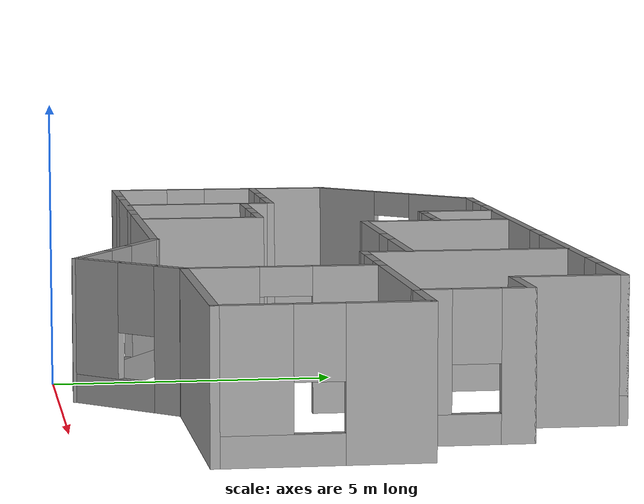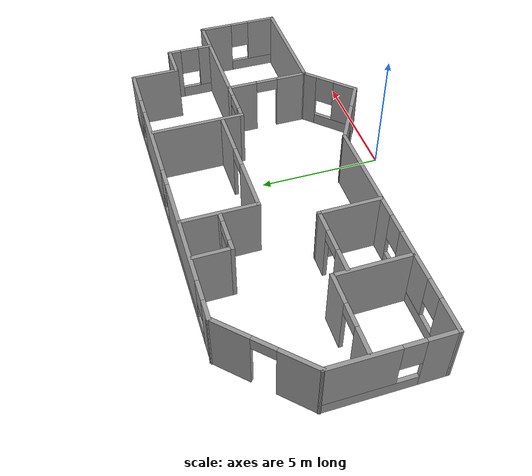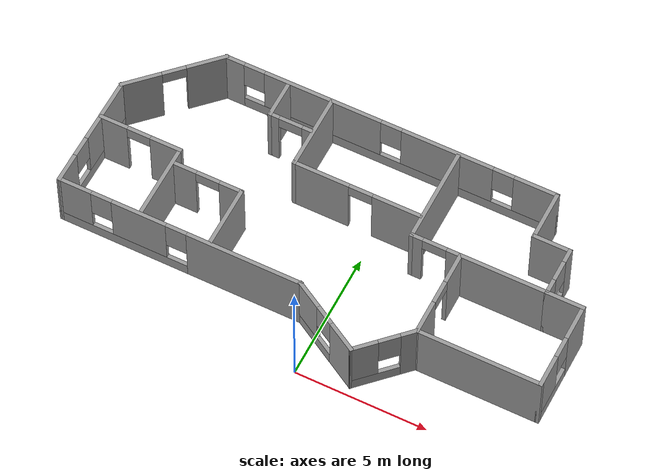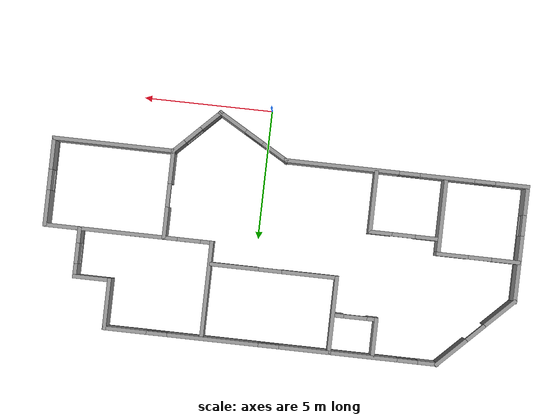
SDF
<?xml version='1.0'?>
<sdf version='1.6'>
  <model name='house'>
    <pose frame=''>-0.953432 4.70909 0 0 -0 0</pose>
    <link name='Wall_10'>
      <pose frame=''>3.72086 -3.525 0 0 0 -2.35619</pose>
      <visual name='Wall_10_Visual_0'>
        <pose frame=''>-0.917996 0 1.25 0 -0 0</pose>
        <geometry>
          <box>
            <size>0.664008 0.15 2.5</size>
          </box>
        </geometry>
        <material>
          <script>
            <uri>file://media/materials/scripts/gazebo.material</uri>
            <name>Gazebo/Grey</name>
          </script>
          <ambient>1 1 1 1</ambient>
        </material>
        <meta>
          <layer>0</layer>
        </meta>
      </visual>
      <collision name='Wall_10_Collision_0'>
        <geometry>
          <box>
            <size>0.664008 0.15 2.5</size>
          </box>
        </geometry>
        <pose frame=''>-0.917996 0 1.25 0 -0 0</pose>
      </collision>
      <visual name='Wall_10_Visual_1'>
        <pose frame=''>0.332004 0 0.25 0 -0 0</pose>
        <geometry>
          <box>
            <size>1.83599 0.15 0.5</size>
          </box>
        </geometry>
        <material>
          <script>
            <uri>file://media/materials/scripts/gazebo.material</uri>
            <name>Gazebo/Grey</name>
          </script>
          <ambient>1 1 1 1</ambient>
        </material>
        <meta>
          <layer>0</layer>
        </meta>
      </visual>
      <collision name='Wall_10_Collision_1'>
        <geometry>
          <box>
            <size>1.83599 0.15 0.5</size>
          </box>
        </geometry>
        <pose frame=''>0.332004 0 0.25 0 -0 0</pose>
      </collision>
      <visual name='Wall_10_Visual_2'>
        <pose frame=''>0.732004 0 1.5 0 -0 0</pose>
        <geometry>
          <box>
            <size>1.03599 0.15 2</size>
          </box>
        </geometry>
        <material>
          <script>
            <uri>file://media/materials/scripts/gazebo.material</uri>
            <name>Gazebo/Grey</name>
          </script>
          <ambient>1 1 1 1</ambient>
        </material>
        <meta>
          <layer>0</layer>
        </meta>
      </visual>
      <collision name='Wall_10_Collision_2'>
        <geometry>
          <box>
            <size>1.03599 0.15 2</size>
          </box>
        </geometry>
        <pose frame=''>0.732004 0 1.5 0 -0 0</pose>
      </collision>
      <visual name='Wall_10_Visual_3'>
        <pose frame=''>-0.185992 0 1.9 0 -0 0</pose>
        <geometry>
          <box>
            <size>0.8 0.15 1.2</size>
          </box>
        </geometry>
        <material>
          <script>
            <uri>file://media/materials/scripts/gazebo.material</uri>
            <name>Gazebo/Grey</name>
          </script>
          <ambient>1 1 1 1</ambient>
        </material>
        <meta>
          <layer>0</layer>
        </meta>
      </visual>
      <collision name='Wall_10_Collision_3'>
        <geometry>
          <box>
            <size>0.8 0.15 1.2</size>
          </box>
        </geometry>
        <pose frame=''>-0.185992 0 1.9 0 -0 0</pose>
      </collision>
    </link>
    <link name='Wall_11'>
      <pose frame=''>1.54767 -3.58085 0 0 -0 2.61799</pose>
      <visual name='Wall_11_Visual_0'>
        <pose frame=''>-0.990098 0 1.25 0 -0 0</pose>
        <geometry>
          <box>
            <size>1.2698 0.15 2.5</size>
          </box>
        </geometry>
        <material>
          <script>
            <uri>file://media/materials/scripts/gazebo.material</uri>
            <name>Gazebo/Grey</name>
          </script>
          <ambient>1 1 1 1</ambient>
        </material>
        <meta>
          <layer>0</layer>
        </meta>
      </visual>
      <collision name='Wall_11_Collision_0'>
        <geometry>
          <box>
            <size>1.2698 0.15 2.5</size>
          </box>
        </geometry>
        <pose frame=''>-0.990098 0 1.25 0 -0 0</pose>
      </collision>
      <visual name='Wall_11_Visual_1'>
        <pose frame=''>0.634902 0 0.25 0 -0 0</pose>
        <geometry>
          <box>
            <size>1.9802 0.15 0.5</size>
          </box>
        </geometry>
        <material>
          <script>
            <uri>file://media/materials/scripts/gazebo.material</uri>
            <name>Gazebo/Grey</name>
          </script>
          <ambient>1 1 1 1</ambient>
        </material>
        <meta>
          <layer>0</layer>
        </meta>
      </visual>
      <collision name='Wall_11_Collision_1'>
        <geometry>
          <box>
            <size>1.9802 0.15 0.5</size>
          </box>
        </geometry>
        <pose frame=''>0.634902 0 0.25 0 -0 0</pose>
      </collision>
      <visual name='Wall_11_Visual_2'>
        <pose frame=''>1.0349 0 1.5 0 -0 0</pose>
        <geometry>
          <box>
            <size>1.1802 0.15 2</size>
          </box>
        </geometry>
        <material>
          <script>
            <uri>file://media/materials/scripts/gazebo.material</uri>
            <name>Gazebo/Grey</name>
          </script>
          <ambient>1 1 1 1</ambient>
        </material>
        <meta>
          <layer>0</layer>
        </meta>
      </visual>
      <collision name='Wall_11_Collision_2'>
        <geometry>
          <box>
            <size>1.1802 0.15 2</size>
          </box>
        </geometry>
        <pose frame=''>1.0349 0 1.5 0 -0 0</pose>
      </collision>
      <visual name='Wall_11_Visual_3'>
        <pose frame=''>0.044803 0 1.9 0 -0 0</pose>
        <geometry>
          <box>
            <size>0.8 0.15 1.2</size>
          </box>
        </geometry>
        <material>
          <script>
            <uri>file://media/materials/scripts/gazebo.material</uri>
            <name>Gazebo/Grey</name>
          </script>
          <ambient>1 1 1 1</ambient>
        </material>
        <meta>
          <layer>0</layer>
        </meta>
      </visual>
      <collision name='Wall_11_Collision_3'>
        <geometry>
          <box>
            <size>0.8 0.15 1.2</size>
          </box>
        </geometry>
        <pose frame=''>0.044803 0 1.9 0 -0 0</pose>
      </collision>
    </link>
    <link name='Wall_12'>
      <pose frame=''>-4.46967 -2.80585 0 0 -0 3.14159</pose>
      <visual name='Wall_12_Visual_0'>
        <pose frame=''>-2.52226 0 1.25 0 -0 0</pose>
        <geometry>
          <box>
            <size>4.45547 0.15 2.5</size>
          </box>
        </geometry>
        <material>
          <script>
            <uri>file://media/materials/scripts/gazebo.material</uri>
            <name>Gazebo/Grey</name>
          </script>
          <ambient>1 1 1 1</ambient>
        </material>
        <meta>
          <layer>0</layer>
        </meta>
      </visual>
      <collision name='Wall_12_Collision_0'>
        <geometry>
          <box>
            <size>4.45547 0.15 2.5</size>
          </box>
        </geometry>
        <pose frame=''>-2.52226 0 1.25 0 -0 0</pose>
      </collision>
      <visual name='Wall_12_Visual_1'>
        <pose frame=''>2.22774 0 0.25 0 -0 0</pose>
        <geometry>
          <box>
            <size>5.04453 0.15 0.5</size>
          </box>
        </geometry>
        <material>
          <script>
            <uri>file://media/materials/scripts/gazebo.material</uri>
            <name>Gazebo/Grey</name>
          </script>
          <ambient>1 1 1 1</ambient>
        </material>
        <meta>
          <layer>0</layer>
        </meta>
      </visual>
      <collision name='Wall_12_Collision_1'>
        <geometry>
          <box>
            <size>5.04453 0.15 0.5</size>
          </box>
        </geometry>
        <pose frame=''>2.22774 0 0.25 0 -0 0</pose>
      </collision>
      <visual name='Wall_12_Visual_2'>
        <pose frame=''>1.5627 0 1.5 0 -0 0</pose>
        <geometry>
          <box>
            <size>2.11446 0.15 2</size>
          </box>
        </geometry>
        <material>
          <script>
            <uri>file://media/materials/scripts/gazebo.material</uri>
            <name>Gazebo/Grey</name>
          </script>
          <ambient>1 1 1 1</ambient>
        </material>
        <meta>
          <layer>0</layer>
        </meta>
      </visual>
      <collision name='Wall_12_Collision_2'>
        <geometry>
          <box>
            <size>2.11446 0.15 2</size>
          </box>
        </geometry>
        <pose frame=''>1.5627 0 1.5 0 -0 0</pose>
      </collision>
      <visual name='Wall_12_Visual_3'>
        <pose frame=''>4.08496 0 1.5 0 -0 0</pose>
        <geometry>
          <box>
            <size>1.33007 0.15 2</size>
          </box>
        </geometry>
        <material>
          <script>
            <uri>file://media/materials/scripts/gazebo.material</uri>
            <name>Gazebo/Grey</name>
          </script>
          <ambient>1 1 1 1</ambient>
        </material>
        <meta>
          <layer>0</layer>
        </meta>
      </visual>
      <collision name='Wall_12_Collision_3'>
        <geometry>
          <box>
            <size>1.33007 0.15 2</size>
          </box>
        </geometry>
        <pose frame=''>4.08496 0 1.5 0 -0 0</pose>
      </collision>
      <visual name='Wall_12_Visual_4'>
        <pose frame=''>0.10547 0 1.9 0 -0 0</pose>
        <geometry>
          <box>
            <size>0.8 0.15 1.2</size>
          </box>
        </geometry>
        <material>
          <script>
            <uri>file://media/materials/scripts/gazebo.material</uri>
            <name>Gazebo/Grey</name>
          </script>
          <ambient>1 1 1 1</ambient>
        </material>
        <meta>
          <layer>0</layer>
        </meta>
      </visual>
      <collision name='Wall_12_Collision_4'>
        <geometry>
          <box>
            <size>0.8 0.15 1.2</size>
          </box>
        </geometry>
        <pose frame=''>0.10547 0 1.9 0 -0 0</pose>
      </collision>
      <visual name='Wall_12_Visual_5'>
        <pose frame=''>3.01993 0 1.9 0 -0 0</pose>
        <geometry>
          <box>
            <size>0.8 0.15 1.2</size>
          </box>
        </geometry>
        <material>
          <script>
            <uri>file://media/materials/scripts/gazebo.material</uri>
            <name>Gazebo/Grey</name>
          </script>
          <ambient>1 1 1 1</ambient>
        </material>
        <meta>
          <layer>0</layer>
        </meta>
      </visual>
      <collision name='Wall_12_Collision_5'>
        <geometry>
          <box>
            <size>0.8 0.15 1.2</size>
          </box>
        </geometry>
        <pose frame=''>3.01993 0 1.9 0 -0 0</pose>
      </collision>
    </link>
    <link name='Wall_13'>
      <pose frame=''>-9.13266 -0.586181 0 0 -0 1.56539</pose>
      <visual name='Wall_13_Visual_0'>
        <pose frame=''>-1.70872 0 1.25 0 -0 0</pose>
        <geometry>
          <box>
            <size>1.17197 0.15 2.5</size>
          </box>
        </geometry>
        <material>
          <script>
            <uri>file://media/materials/scripts/gazebo.material</uri>
            <name>Gazebo/Grey</name>
          </script>
          <ambient>1 1 1 1</ambient>
        </material>
        <meta>
          <layer>0</layer>
        </meta>
      </visual>
      <collision name='Wall_13_Collision_0'>
        <geometry>
          <box>
            <size>1.17197 0.15 2.5</size>
          </box>
        </geometry>
        <pose frame=''>-1.70872 0 1.25 0 -0 0</pose>
      </collision>
      <visual name='Wall_13_Visual_1'>
        <pose frame=''>0.585986 0 0.25 0 -0 0</pose>
        <geometry>
          <box>
            <size>3.41743 0.15 0.5</size>
          </box>
        </geometry>
        <material>
          <script>
            <uri>file://media/materials/scripts/gazebo.material</uri>
            <name>Gazebo/Grey</name>
          </script>
          <ambient>1 1 1 1</ambient>
        </material>
        <meta>
          <layer>0</layer>
        </meta>
      </visual>
      <collision name='Wall_13_Collision_1'>
        <geometry>
          <box>
            <size>3.41743 0.15 0.5</size>
          </box>
        </geometry>
        <pose frame=''>0.585986 0 0.25 0 -0 0</pose>
      </collision>
      <visual name='Wall_13_Visual_2'>
        <pose frame=''>0.985986 0 1.5 0 -0 0</pose>
        <geometry>
          <box>
            <size>2.61743 0.15 2</size>
          </box>
        </geometry>
        <material>
          <script>
            <uri>file://media/materials/scripts/gazebo.material</uri>
            <name>Gazebo/Grey</name>
          </script>
          <ambient>1 1 1 1</ambient>
        </material>
        <meta>
          <layer>0</layer>
        </meta>
      </visual>
      <collision name='Wall_13_Collision_2'>
        <geometry>
          <box>
            <size>2.61743 0.15 2</size>
          </box>
        </geometry>
        <pose frame=''>0.985986 0 1.5 0 -0 0</pose>
      </collision>
      <visual name='Wall_13_Visual_3'>
        <pose frame=''>-0.722731 0 1.9 0 -0 0</pose>
        <geometry>
          <box>
            <size>0.8 0.15 1.2</size>
          </box>
        </geometry>
        <material>
          <script>
            <uri>file://media/materials/scripts/gazebo.material</uri>
            <name>Gazebo/Grey</name>
          </script>
          <ambient>1 1 1 1</ambient>
        </material>
        <meta>
          <layer>0</layer>
        </meta>
      </visual>
      <collision name='Wall_13_Collision_3'>
        <geometry>
          <box>
            <size>0.8 0.15 1.2</size>
          </box>
        </geometry>
        <pose frame=''>-0.722731 0 1.9 0 -0 0</pose>
      </collision>
    </link>
    <link name='Wall_15'>
      <pose frame=''>-7.54673 0.125343 0 0 -0 0</pose>
      <visual name='Wall_15_Visual_0'>
        <pose frame=''>-1.06675 0 1.25 0 -0 0</pose>
        <geometry>
          <box>
            <size>1.11649 0.15 2.5</size>
          </box>
        </geometry>
        <material>
          <script>
            <uri>file://media/materials/scripts/gazebo.material</uri>
            <name>Gazebo/Grey</name>
          </script>
          <ambient>1 1 1 1</ambient>
        </material>
        <meta>
          <layer>0</layer>
        </meta>
      </visual>
      <collision name='Wall_15_Collision_0'>
        <geometry>
          <box>
            <size>1.11649 0.15 2.5</size>
          </box>
        </geometry>
        <pose frame=''>-1.06675 0 1.25 0 -0 0</pose>
      </collision>
      <visual name='Wall_15_Visual_1'>
        <pose frame=''>1.00825 0 1.25 0 -0 0</pose>
        <geometry>
          <box>
            <size>1.23351 0.15 2.5</size>
          </box>
        </geometry>
        <material>
          <script>
            <uri>file://media/materials/scripts/gazebo.material</uri>
            <name>Gazebo/Grey</name>
          </script>
          <ambient>1 1 1 1</ambient>
        </material>
        <meta>
          <layer>0</layer>
        </meta>
      </visual>
      <collision name='Wall_15_Collision_1'>
        <geometry>
          <box>
            <size>1.23351 0.15 2.5</size>
          </box>
        </geometry>
        <pose frame=''>1.00825 0 1.25 0 -0 0</pose>
      </collision>
      <visual name='Wall_15_Visual_2'>
        <pose frame=''>-0.058511 0 2.25 0 -0 0</pose>
        <geometry>
          <box>
            <size>0.9 0.15 0.5</size>
          </box>
        </geometry>
        <material>
          <script>
            <uri>file://media/materials/scripts/gazebo.material</uri>
            <name>Gazebo/Grey</name>
          </script>
          <ambient>1 1 1 1</ambient>
        </material>
        <meta>
          <layer>0</layer>
        </meta>
      </visual>
      <collision name='Wall_15_Collision_2'>
        <geometry>
          <box>
            <size>0.9 0.15 0.5</size>
          </box>
        </geometry>
        <pose frame=''>-0.058511 0 2.25 0 -0 0</pose>
      </collision>
    </link>
    <link name='Wall_16'>
      <collision name='Wall_16_Collision'>
        <geometry>
          <box>
            <size>3 0.15 2.5</size>
          </box>
        </geometry>
        <pose frame=''>0 0 1.25 0 -0 0</pose>
      </collision>
      <visual name='Wall_16_Visual'>
        <pose frame=''>0 0 1.25 0 -0 0</pose>
        <geometry>
          <box>
            <size>3 0.15 2.5</size>
          </box>
        </geometry>
        <material>
          <script>
            <uri>file://media/materials/scripts/gazebo.material</uri>
            <name>Gazebo/Grey</name>
          </script>
          <ambient>1 1 1 1</ambient>
        </material>
        <meta>
          <layer>0</layer>
        </meta>
      </visual>
      <pose frame=''>-5.99674 -1.29966 0 0 0 -1.5708</pose>
    </link>
    <link name='Wall_18'>
      <pose frame=''>-4.60471 -0.433261 0 0 -0 0</pose>
      <visual name='Wall_18_Visual_0'>
        <pose frame=''>-0.909278 0 1.25 0 -0 0</pose>
        <geometry>
          <box>
            <size>0.931444 0.15 2.5</size>
          </box>
        </geometry>
        <material>
          <script>
            <uri>file://media/materials/scripts/gazebo.material</uri>
            <name>Gazebo/Grey</name>
          </script>
          <ambient>1 1 1 1</ambient>
        </material>
        <meta>
          <layer>0</layer>
        </meta>
      </visual>
      <collision name='Wall_18_Collision_0'>
        <geometry>
          <box>
            <size>0.931444 0.15 2.5</size>
          </box>
        </geometry>
        <pose frame=''>-0.909278 0 1.25 0 -0 0</pose>
      </collision>
      <visual name='Wall_18_Visual_1'>
        <pose frame=''>0.915722 0 1.25 0 -0 0</pose>
        <geometry>
          <box>
            <size>0.918556 0.15 2.5</size>
          </box>
        </geometry>
        <material>
          <script>
            <uri>file://media/materials/scripts/gazebo.material</uri>
            <name>Gazebo/Grey</name>
          </script>
          <ambient>1 1 1 1</ambient>
        </material>
        <meta>
          <layer>0</layer>
        </meta>
      </visual>
      <collision name='Wall_18_Collision_1'>
        <geometry>
          <box>
            <size>0.918556 0.15 2.5</size>
          </box>
        </geometry>
        <pose frame=''>0.915722 0 1.25 0 -0 0</pose>
      </collision>
      <visual name='Wall_18_Visual_2'>
        <pose frame=''>0.006444 0 2.25 0 -0 0</pose>
        <geometry>
          <box>
            <size>0.9 0.15 0.5</size>
          </box>
        </geometry>
        <material>
          <script>
            <uri>file://media/materials/scripts/gazebo.material</uri>
            <name>Gazebo/Grey</name>
          </script>
          <ambient>1 1 1 1</ambient>
        </material>
        <meta>
          <layer>0</layer>
        </meta>
      </visual>
      <collision name='Wall_18_Collision_2'>
        <geometry>
          <box>
            <size>0.9 0.15 0.5</size>
          </box>
        </geometry>
        <pose frame=''>0.006444 0 2.25 0 -0 0</pose>
      </collision>
    </link>
    <link name='Wall_19'>
      <collision name='Wall_19_Collision'>
        <geometry>
          <box>
            <size>2.5 0.15 2.5</size>
          </box>
        </geometry>
        <pose frame=''>0 0 1.25 0 -0 0</pose>
      </collision>
      <visual name='Wall_19_Visual'>
        <pose frame=''>0 0 1.25 0 -0 0</pose>
        <geometry>
          <box>
            <size>2.5 0.15 2.5</size>
          </box>
        </geometry>
        <material>
          <script>
            <uri>file://media/materials/scripts/gazebo.material</uri>
            <name>Gazebo/Grey</name>
          </script>
          <ambient>1 1 1 1</ambient>
        </material>
        <meta>
          <layer>0</layer>
        </meta>
      </visual>
      <pose frame=''>-3.30471 -1.60826 0 0 0 -1.5708</pose>
    </link>
    <link name='Wall_2'>
      <pose frame=''>-7.75947 2.99467 0 0 -0 0.785398</pose>
      <visual name='Wall_2_Visual_0'>
        <pose frame=''>-1.22818 0 1.25 0 -0 0</pose>
        <geometry>
          <box>
            <size>1.54364 0.15 2.5</size>
          </box>
        </geometry>
        <material>
          <script>
            <uri>file://media/materials/scripts/gazebo.material</uri>
            <name>Gazebo/Grey</name>
          </script>
          <ambient>1 1 1 1</ambient>
        </material>
        <meta>
          <layer>0</layer>
        </meta>
      </visual>
      <collision name='Wall_2_Collision_0'>
        <geometry>
          <box>
            <size>1.54364 0.15 2.5</size>
          </box>
        </geometry>
        <pose frame=''>-1.22818 0 1.25 0 -0 0</pose>
      </collision>
      <visual name='Wall_2_Visual_1'>
        <pose frame=''>1.22182 0 1.25 0 -0 0</pose>
        <geometry>
          <box>
            <size>1.55636 0.15 2.5</size>
          </box>
        </geometry>
        <material>
          <script>
            <uri>file://media/materials/scripts/gazebo.material</uri>
            <name>Gazebo/Grey</name>
          </script>
          <ambient>1 1 1 1</ambient>
        </material>
        <meta>
          <layer>0</layer>
        </meta>
      </visual>
      <collision name='Wall_2_Collision_1'>
        <geometry>
          <box>
            <size>1.55636 0.15 2.5</size>
          </box>
        </geometry>
        <pose frame=''>1.22182 0 1.25 0 -0 0</pose>
      </collision>
      <visual name='Wall_2_Visual_2'>
        <pose frame=''>-0.006361 0 2.25 0 -0 0</pose>
        <geometry>
          <box>
            <size>0.9 0.15 0.5</size>
          </box>
        </geometry>
        <material>
          <script>
            <uri>file://media/materials/scripts/gazebo.material</uri>
            <name>Gazebo/Grey</name>
          </script>
          <ambient>1 1 1 1</ambient>
        </material>
        <meta>
          <layer>0</layer>
        </meta>
      </visual>
      <collision name='Wall_2_Collision_2'>
        <geometry>
          <box>
            <size>0.9 0.15 0.5</size>
          </box>
        </geometry>
        <pose frame=''>-0.006361 0 2.25 0 -0 0</pose>
      </collision>
    </link>
    <link name='Wall_24'>
      <pose frame=''>4.55171 -1.01915 0 0 -0 1.5708</pose>
      <visual name='Wall_24_Visual_0'>
        <pose frame=''>-1.0809 0 1.25 0 -0 0</pose>
        <geometry>
          <box>
            <size>1.3382 0.15 2.5</size>
          </box>
        </geometry>
        <material>
          <script>
            <uri>file://media/materials/scripts/gazebo.material</uri>
            <name>Gazebo/Grey</name>
          </script>
          <ambient>1 1 1 1</ambient>
        </material>
        <meta>
          <layer>0</layer>
        </meta>
      </visual>
      <collision name='Wall_24_Collision_0'>
        <geometry>
          <box>
            <size>1.3382 0.15 2.5</size>
          </box>
        </geometry>
        <pose frame=''>-1.0809 0 1.25 0 -0 0</pose>
      </collision>
      <visual name='Wall_24_Visual_1'>
        <pose frame=''>1.1191 0 1.25 0 -0 0</pose>
        <geometry>
          <box>
            <size>1.2618 0.15 2.5</size>
          </box>
        </geometry>
        <material>
          <script>
            <uri>file://media/materials/scripts/gazebo.material</uri>
            <name>Gazebo/Grey</name>
          </script>
          <ambient>1 1 1 1</ambient>
        </material>
        <meta>
          <layer>0</layer>
        </meta>
      </visual>
      <collision name='Wall_24_Collision_1'>
        <geometry>
          <box>
            <size>1.2618 0.15 2.5</size>
          </box>
        </geometry>
        <pose frame=''>1.1191 0 1.25 0 -0 0</pose>
      </collision>
      <visual name='Wall_24_Visual_2'>
        <pose frame=''>0.038199 0 2.25 0 -0 0</pose>
        <geometry>
          <box>
            <size>0.9 0.15 0.5</size>
          </box>
        </geometry>
        <material>
          <script>
            <uri>file://media/materials/scripts/gazebo.material</uri>
            <name>Gazebo/Grey</name>
          </script>
          <ambient>1 1 1 1</ambient>
        </material>
        <meta>
          <layer>0</layer>
        </meta>
      </visual>
      <collision name='Wall_24_Collision_2'>
        <geometry>
          <box>
            <size>0.9 0.15 0.5</size>
          </box>
        </geometry>
        <pose frame=''>0.038199 0 2.25 0 -0 0</pose>
      </collision>
    </link>
    <link name='Wall_25'>
      <collision name='Wall_25_Collision'>
        <geometry>
          <box>
            <size>3.4 0.15 2.5</size>
          </box>
        </geometry>
        <pose frame=''>0 0 1.25 0 -0 0</pose>
      </collision>
      <visual name='Wall_25_Visual'>
        <pose frame=''>0 0 1.25 0 -0 0</pose>
        <geometry>
          <box>
            <size>3.4 0.15 2.5</size>
          </box>
        </geometry>
        <material>
          <script>
            <uri>file://media/materials/scripts/gazebo.material</uri>
            <name>Gazebo/Grey</name>
          </script>
          <ambient>1 1 1 1</ambient>
        </material>
        <meta>
          <layer>0</layer>
        </meta>
      </visual>
      <pose frame=''>6.17671 0.655851 0 0 -0 0</pose>
    </link>
    <link name='Wall_27'>
      <pose frame=''>3.62671 0.655851 0 0 -0 3.14159</pose>
      <visual name='Wall_27_Visual_0'>
        <pose frame=''>-0.702488 0 1.25 0 -0 0</pose>
        <geometry>
          <box>
            <size>0.595025 0.15 2.5</size>
          </box>
        </geometry>
        <material>
          <script>
            <uri>file://media/materials/scripts/gazebo.material</uri>
            <name>Gazebo/Grey</name>
          </script>
          <ambient>1 1 1 1</ambient>
        </material>
        <meta>
          <layer>0</layer>
        </meta>
      </visual>
      <collision name='Wall_27_Collision_0'>
        <geometry>
          <box>
            <size>0.595025 0.15 2.5</size>
          </box>
        </geometry>
        <pose frame=''>-0.702488 0 1.25 0 -0 0</pose>
      </collision>
      <visual name='Wall_27_Visual_1'>
        <pose frame=''>0.747512 0 1.25 0 -0 0</pose>
        <geometry>
          <box>
            <size>0.504975 0.15 2.5</size>
          </box>
        </geometry>
        <material>
          <script>
            <uri>file://media/materials/scripts/gazebo.material</uri>
            <name>Gazebo/Grey</name>
          </script>
          <ambient>1 1 1 1</ambient>
        </material>
        <meta>
          <layer>0</layer>
        </meta>
      </visual>
      <collision name='Wall_27_Collision_1'>
        <geometry>
          <box>
            <size>0.504975 0.15 2.5</size>
          </box>
        </geometry>
        <pose frame=''>0.747512 0 1.25 0 -0 0</pose>
      </collision>
      <visual name='Wall_27_Visual_2'>
        <pose frame=''>0.045025 0 2.25 0 -0 0</pose>
        <geometry>
          <box>
            <size>0.9 0.15 0.5</size>
          </box>
        </geometry>
        <material>
          <script>
            <uri>file://media/materials/scripts/gazebo.material</uri>
            <name>Gazebo/Grey</name>
          </script>
          <ambient>1 1 1 1</ambient>
        </material>
        <meta>
          <layer>0</layer>
        </meta>
      </visual>
      <collision name='Wall_27_Collision_2'>
        <geometry>
          <box>
            <size>0.9 0.15 0.5</size>
          </box>
        </geometry>
        <pose frame=''>0.045025 0 2.25 0 -0 0</pose>
      </collision>
    </link>
    <link name='Wall_29'>
      <collision name='Wall_29_Collision'>
        <geometry>
          <box>
            <size>3.75 0.15 2.5</size>
          </box>
        </geometry>
        <pose frame=''>0 0 1.25 0 -0 0</pose>
      </collision>
      <visual name='Wall_29_Visual'>
        <pose frame=''>0 0 1.25 0 -0 0</pose>
        <geometry>
          <box>
            <size>3.75 0.15 2.5</size>
          </box>
        </geometry>
        <material>
          <script>
            <uri>file://media/materials/scripts/gazebo.material</uri>
            <name>Gazebo/Grey</name>
          </script>
          <ambient>1 1 1 1</ambient>
        </material>
        <meta>
          <layer>0</layer>
        </meta>
      </visual>
      <pose frame=''>2.70171 2.45585 0 0 -0 1.5708</pose>
    </link>
    <link name='Wall_3'>
      <pose frame=''>0.026713 4.35585 0 0 -0 0</pose>
      <visual name='Wall_3_Visual_0'>
        <pose frame=''>-6.0975 0 1.25 0 -0 0</pose>
        <geometry>
          <box>
            <size>0.805004 0.15 2.5</size>
          </box>
        </geometry>
        <material>
          <script>
            <uri>file://media/materials/scripts/gazebo.material</uri>
            <name>Gazebo/Grey</name>
          </script>
          <ambient>1 1 1 1</ambient>
        </material>
        <meta>
          <layer>0</layer>
        </meta>
      </visual>
      <collision name='Wall_3_Collision_0'>
        <geometry>
          <box>
            <size>0.805004 0.15 2.5</size>
          </box>
        </geometry>
        <pose frame=''>-6.0975 0 1.25 0 -0 0</pose>
      </collision>
      <visual name='Wall_3_Visual_1'>
        <pose frame=''>0.402502 0 0.25 0 -0 0</pose>
        <geometry>
          <box>
            <size>12.195 0.15 0.5</size>
          </box>
        </geometry>
        <material>
          <script>
            <uri>file://media/materials/scripts/gazebo.material</uri>
            <name>Gazebo/Grey</name>
          </script>
          <ambient>1 1 1 1</ambient>
        </material>
        <meta>
          <layer>0</layer>
        </meta>
      </visual>
      <collision name='Wall_3_Collision_1'>
        <geometry>
          <box>
            <size>12.195 0.15 0.5</size>
          </box>
        </geometry>
        <pose frame=''>0.402502 0 0.25 0 -0 0</pose>
      </collision>
      <visual name='Wall_3_Visual_2'>
        <pose frame=''>-2.60983 0 1.5 0 -0 0</pose>
        <geometry>
          <box>
            <size>4.57032 0.15 2</size>
          </box>
        </geometry>
        <material>
          <script>
            <uri>file://media/materials/scripts/gazebo.material</uri>
            <name>Gazebo/Grey</name>
          </script>
          <ambient>1 1 1 1</ambient>
        </material>
        <meta>
          <layer>0</layer>
        </meta>
      </visual>
      <collision name='Wall_3_Collision_2'>
        <geometry>
          <box>
            <size>4.57032 0.15 2</size>
          </box>
        </geometry>
        <pose frame=''>-2.60983 0 1.5 0 -0 0</pose>
      </collision>
      <visual name='Wall_3_Visual_3'>
        <pose frame=''>2.23754 0 1.5 0 -0 0</pose>
        <geometry>
          <box>
            <size>3.52442 0.15 2</size>
          </box>
        </geometry>
        <material>
          <script>
            <uri>file://media/materials/scripts/gazebo.material</uri>
            <name>Gazebo/Grey</name>
          </script>
          <ambient>1 1 1 1</ambient>
        </material>
        <meta>
          <layer>0</layer>
        </meta>
      </visual>
      <collision name='Wall_3_Collision_3'>
        <geometry>
          <box>
            <size>3.52442 0.15 2</size>
          </box>
        </geometry>
        <pose frame=''>2.23754 0 1.5 0 -0 0</pose>
      </collision>
      <visual name='Wall_3_Visual_4'>
        <pose frame=''>5.64987 0 1.5 0 -0 0</pose>
        <geometry>
          <box>
            <size>1.70026 0.15 2</size>
          </box>
        </geometry>
        <material>
          <script>
            <uri>file://media/materials/scripts/gazebo.material</uri>
            <name>Gazebo/Grey</name>
          </script>
          <ambient>1 1 1 1</ambient>
        </material>
        <meta>
          <layer>0</layer>
        </meta>
      </visual>
      <collision name='Wall_3_Collision_4'>
        <geometry>
          <box>
            <size>1.70026 0.15 2</size>
          </box>
        </geometry>
        <pose frame=''>5.64987 0 1.5 0 -0 0</pose>
      </collision>
      <visual name='Wall_3_Visual_5'>
        <pose frame=''>-5.295 0 1.9 0 -0 0</pose>
        <geometry>
          <box>
            <size>0.8 0.15 1.2</size>
          </box>
        </geometry>
        <material>
          <script>
            <uri>file://media/materials/scripts/gazebo.material</uri>
            <name>Gazebo/Grey</name>
          </script>
          <ambient>1 1 1 1</ambient>
        </material>
        <meta>
          <layer>0</layer>
        </meta>
      </visual>
      <collision name='Wall_3_Collision_5'>
        <geometry>
          <box>
            <size>0.8 0.15 1.2</size>
          </box>
        </geometry>
        <pose frame=''>-5.295 0 1.9 0 -0 0</pose>
      </collision>
      <visual name='Wall_3_Visual_6'>
        <pose frame=''>0.075327 0 1.9 0 -0 0</pose>
        <geometry>
          <box>
            <size>0.8 0.15 1.2</size>
          </box>
        </geometry>
        <material>
          <script>
            <uri>file://media/materials/scripts/gazebo.material</uri>
            <name>Gazebo/Grey</name>
          </script>
          <ambient>1 1 1 1</ambient>
        </material>
        <meta>
          <layer>0</layer>
        </meta>
      </visual>
      <collision name='Wall_3_Collision_6'>
        <geometry>
          <box>
            <size>0.8 0.15 1.2</size>
          </box>
        </geometry>
        <pose frame=''>0.075327 0 1.9 0 -0 0</pose>
      </collision>
      <visual name='Wall_3_Visual_7'>
        <pose frame=''>4.39975 0 1.9 0 -0 0</pose>
        <geometry>
          <box>
            <size>0.8 0.15 1.2</size>
          </box>
        </geometry>
        <material>
          <script>
            <uri>file://media/materials/scripts/gazebo.material</uri>
            <name>Gazebo/Grey</name>
          </script>
          <ambient>1 1 1 1</ambient>
        </material>
        <meta>
          <layer>0</layer>
        </meta>
      </visual>
      <collision name='Wall_3_Collision_7'>
        <geometry>
          <box>
            <size>0.8 0.15 1.2</size>
          </box>
        </geometry>
        <pose frame=''>4.39975 0 1.9 0 -0 0</pose>
      </collision>
    </link>
    <link name='Wall_31'>
      <collision name='Wall_31_Collision'>
        <geometry>
          <box>
            <size>3 0.15 2.5</size>
          </box>
        </geometry>
        <pose frame=''>0 0 1.25 0 -0 0</pose>
      </collision>
      <visual name='Wall_31_Visual'>
        <pose frame=''>0 0 1.25 0 -0 0</pose>
        <geometry>
          <box>
            <size>3 0.15 2.5</size>
          </box>
        </geometry>
        <material>
          <script>
            <uri>file://media/materials/scripts/gazebo.material</uri>
            <name>Gazebo/Grey</name>
          </script>
          <ambient>1 1 1 1</ambient>
        </material>
        <meta>
          <layer>0</layer>
        </meta>
      </visual>
      <pose frame=''>-2.22775 2.89498 0 0 0 -1.5708</pose>
    </link>
    <link name='Wall_32'>
      <pose frame=''>0.197247 1.46999 0 0 -0 0</pose>
      <visual name='Wall_32_Visual_0'>
        <pose frame=''>-1.39778 0 1.25 0 -0 0</pose>
        <geometry>
          <box>
            <size>2.20444 0.15 2.5</size>
          </box>
        </geometry>
        <material>
          <script>
            <uri>file://media/materials/scripts/gazebo.material</uri>
            <name>Gazebo/Grey</name>
          </script>
          <ambient>1 1 1 1</ambient>
        </material>
        <meta>
          <layer>0</layer>
        </meta>
      </visual>
      <collision name='Wall_32_Collision_0'>
        <geometry>
          <box>
            <size>2.20444 0.15 2.5</size>
          </box>
        </geometry>
        <pose frame=''>-1.39778 0 1.25 0 -0 0</pose>
      </collision>
      <visual name='Wall_32_Visual_1'>
        <pose frame=''>1.55222 0 1.25 0 -0 0</pose>
        <geometry>
          <box>
            <size>1.89556 0.15 2.5</size>
          </box>
        </geometry>
        <material>
          <script>
            <uri>file://media/materials/scripts/gazebo.material</uri>
            <name>Gazebo/Grey</name>
          </script>
          <ambient>1 1 1 1</ambient>
        </material>
        <meta>
          <layer>0</layer>
        </meta>
      </visual>
      <collision name='Wall_32_Collision_1'>
        <geometry>
          <box>
            <size>1.89556 0.15 2.5</size>
          </box>
        </geometry>
        <pose frame=''>1.55222 0 1.25 0 -0 0</pose>
      </collision>
      <visual name='Wall_32_Visual_2'>
        <pose frame=''>0.154436 0 2.25 0 -0 0</pose>
        <geometry>
          <box>
            <size>0.9 0.15 0.5</size>
          </box>
        </geometry>
        <material>
          <script>
            <uri>file://media/materials/scripts/gazebo.material</uri>
            <name>Gazebo/Grey</name>
          </script>
          <ambient>1 1 1 1</ambient>
        </material>
        <meta>
          <layer>0</layer>
        </meta>
      </visual>
      <collision name='Wall_32_Collision_2'>
        <geometry>
          <box>
            <size>0.9 0.15 0.5</size>
          </box>
        </geometry>
        <pose frame=''>0.154436 0 2.25 0 -0 0</pose>
      </collision>
    </link>
    <link name='Wall_34'>
      <pose frame=''>-3.10834 2.90084 0 0 -0 3.14159</pose>
      <visual name='Wall_34_Visual_0'>
        <pose frame=''>-0.66928 0 1.25 0 -0 0</pose>
        <geometry>
          <box>
            <size>0.411441 0.15 2.5</size>
          </box>
        </geometry>
        <material>
          <script>
            <uri>file://media/materials/scripts/gazebo.material</uri>
            <name>Gazebo/Grey</name>
          </script>
          <ambient>1 1 1 1</ambient>
        </material>
        <meta>
          <layer>0</layer>
        </meta>
      </visual>
      <collision name='Wall_34_Collision_0'>
        <geometry>
          <box>
            <size>0.411441 0.15 2.5</size>
          </box>
        </geometry>
        <pose frame=''>-0.66928 0 1.25 0 -0 0</pose>
      </collision>
      <visual name='Wall_34_Visual_1'>
        <pose frame=''>0.65572 0 1.25 0 -0 0</pose>
        <geometry>
          <box>
            <size>0.438559 0.15 2.5</size>
          </box>
        </geometry>
        <material>
          <script>
            <uri>file://media/materials/scripts/gazebo.material</uri>
            <name>Gazebo/Grey</name>
          </script>
          <ambient>1 1 1 1</ambient>
        </material>
        <meta>
          <layer>0</layer>
        </meta>
      </visual>
      <collision name='Wall_34_Collision_1'>
        <geometry>
          <box>
            <size>0.438559 0.15 2.5</size>
          </box>
        </geometry>
        <pose frame=''>0.65572 0 1.25 0 -0 0</pose>
      </collision>
      <visual name='Wall_34_Visual_2'>
        <pose frame=''>-0.013559 0 2.25 0 -0 0</pose>
        <geometry>
          <box>
            <size>0.9 0.15 0.5</size>
          </box>
        </geometry>
        <material>
          <script>
            <uri>file://media/materials/scripts/gazebo.material</uri>
            <name>Gazebo/Grey</name>
          </script>
          <ambient>1 1 1 1</ambient>
        </material>
        <meta>
          <layer>0</layer>
        </meta>
      </visual>
      <collision name='Wall_34_Collision_2'>
        <geometry>
          <box>
            <size>0.9 0.15 0.5</size>
          </box>
        </geometry>
        <pose frame=''>-0.013559 0 2.25 0 -0 0</pose>
      </collision>
    </link>
    <link name='Wall_35'>
      <collision name='Wall_35_Collision'>
        <geometry>
          <box>
            <size>1.5 0.15 2.5</size>
          </box>
        </geometry>
        <pose frame=''>0 0 1.25 0 -0 0</pose>
      </collision>
      <visual name='Wall_35_Visual'>
        <pose frame=''>0 0 1.25 0 -0 0</pose>
        <geometry>
          <box>
            <size>1.5 0.15 2.5</size>
          </box>
        </geometry>
        <material>
          <script>
            <uri>file://media/materials/scripts/gazebo.material</uri>
            <name>Gazebo/Grey</name>
          </script>
          <ambient>1 1 1 1</ambient>
        </material>
        <meta>
          <layer>0</layer>
        </meta>
      </visual>
      <pose frame=''>-3.90834 3.57584 0 0 -0 1.5708</pose>
    </link>
    <link name='Wall_4'>
      <collision name='Wall_4_Collision'>
        <geometry>
          <box>
            <size>2 0.15 2.5</size>
          </box>
        </geometry>
        <pose frame=''>0 0 1.25 0 -0 0</pose>
      </collision>
      <visual name='Wall_4_Visual'>
        <pose frame=''>0 0 1.25 0 -0 0</pose>
        <geometry>
          <box>
            <size>2 0.15 2.5</size>
          </box>
        </geometry>
        <material>
          <script>
            <uri>file://media/materials/scripts/gazebo.material</uri>
            <name>Gazebo/Grey</name>
          </script>
          <ambient>1 1 1 1</ambient>
        </material>
        <meta>
          <layer>0</layer>
        </meta>
      </visual>
      <pose frame=''>6.45171 3.43085 0 0 0 -1.5708</pose>
    </link>
    <link name='Wall_5'>
      <collision name='Wall_5_Collision'>
        <geometry>
          <box>
            <size>1.5 0.15 2.5</size>
          </box>
        </geometry>
        <pose frame=''>0 0 1.25 0 -0 0</pose>
      </collision>
      <visual name='Wall_5_Visual'>
        <pose frame=''>0 0 1.25 0 -0 0</pose>
        <geometry>
          <box>
            <size>1.5 0.15 2.5</size>
          </box>
        </geometry>
        <material>
          <script>
            <uri>file://media/materials/scripts/gazebo.material</uri>
            <name>Gazebo/Grey</name>
          </script>
          <ambient>1 1 1 1</ambient>
        </material>
        <meta>
          <layer>0</layer>
        </meta>
      </visual>
      <pose frame=''>7.12671 2.50585 0 0 -0 0</pose>
    </link>
    <link name='Wall_6'>
      <pose frame=''>7.80171 1.58085 0 0 0 -1.5708</pose>
      <visual name='Wall_6_Visual_0'>
        <pose frame=''>-0.718403 0 1.25 0 -0 0</pose>
        <geometry>
          <box>
            <size>0.563194 0.15 2.5</size>
          </box>
        </geometry>
        <material>
          <script>
            <uri>file://media/materials/scripts/gazebo.material</uri>
            <name>Gazebo/Grey</name>
          </script>
          <ambient>1 1 1 1</ambient>
        </material>
        <meta>
          <layer>0</layer>
        </meta>
      </visual>
      <collision name='Wall_6_Collision_0'>
        <geometry>
          <box>
            <size>0.563194 0.15 2.5</size>
          </box>
        </geometry>
        <pose frame=''>-0.718403 0 1.25 0 -0 0</pose>
      </collision>
      <visual name='Wall_6_Visual_1'>
        <pose frame=''>0.281597 0 0.25 0 -0 0</pose>
        <geometry>
          <box>
            <size>1.43681 0.15 0.5</size>
          </box>
        </geometry>
        <material>
          <script>
            <uri>file://media/materials/scripts/gazebo.material</uri>
            <name>Gazebo/Grey</name>
          </script>
          <ambient>1 1 1 1</ambient>
        </material>
        <meta>
          <layer>0</layer>
        </meta>
      </visual>
      <collision name='Wall_6_Collision_1'>
        <geometry>
          <box>
            <size>1.43681 0.15 0.5</size>
          </box>
        </geometry>
        <pose frame=''>0.281597 0 0.25 0 -0 0</pose>
      </collision>
      <visual name='Wall_6_Visual_2'>
        <pose frame=''>0.681597 0 1.5 0 -0 0</pose>
        <geometry>
          <box>
            <size>0.636806 0.15 2</size>
          </box>
        </geometry>
        <material>
          <script>
            <uri>file://media/materials/scripts/gazebo.material</uri>
            <name>Gazebo/Grey</name>
          </script>
          <ambient>1 1 1 1</ambient>
        </material>
        <meta>
          <layer>0</layer>
        </meta>
      </visual>
      <collision name='Wall_6_Collision_2'>
        <geometry>
          <box>
            <size>0.636806 0.15 2</size>
          </box>
        </geometry>
        <pose frame=''>0.681597 0 1.5 0 -0 0</pose>
      </collision>
      <visual name='Wall_6_Visual_3'>
        <pose frame=''>-0.036806 0 1.9 0 -0 0</pose>
        <geometry>
          <box>
            <size>0.8 0.15 1.2</size>
          </box>
        </geometry>
        <material>
          <script>
            <uri>file://media/materials/scripts/gazebo.material</uri>
            <name>Gazebo/Grey</name>
          </script>
          <ambient>1 1 1 1</ambient>
        </material>
        <meta>
          <layer>0</layer>
        </meta>
      </visual>
      <collision name='Wall_6_Collision_3'>
        <geometry>
          <box>
            <size>0.8 0.15 1.2</size>
          </box>
        </geometry>
        <pose frame=''>-0.036806 0 1.9 0 -0 0</pose>
      </collision>
    </link>
    <link name='Wall_7'>
      <collision name='Wall_7_Collision'>
        <geometry>
          <box>
            <size>1.5 0.15 2.5</size>
          </box>
        </geometry>
        <pose frame=''>0 0 1.25 0 -0 0</pose>
      </collision>
      <visual name='Wall_7_Visual'>
        <pose frame=''>0 0 1.25 0 -0 0</pose>
        <geometry>
          <box>
            <size>1.5 0.15 2.5</size>
          </box>
        </geometry>
        <material>
          <script>
            <uri>file://media/materials/scripts/gazebo.material</uri>
            <name>Gazebo/Grey</name>
          </script>
          <ambient>1 1 1 1</ambient>
        </material>
        <meta>
          <layer>0</layer>
        </meta>
      </visual>
      <pose frame=''>8.47671 0.655851 0 0 -0 0</pose>
    </link>
    <link name='Wall_8'>
      <pose frame=''>9.15171 -1.01915 0 0 0 -1.5708</pose>
      <visual name='Wall_8_Visual_0'>
        <pose frame=''>-1.0409 0 1.25 0 -0 0</pose>
        <geometry>
          <box>
            <size>1.4182 0.15 2.5</size>
          </box>
        </geometry>
        <material>
          <script>
            <uri>file://media/materials/scripts/gazebo.material</uri>
            <name>Gazebo/Grey</name>
          </script>
          <ambient>1 1 1 1</ambient>
        </material>
        <meta>
          <layer>0</layer>
        </meta>
      </visual>
      <collision name='Wall_8_Collision_0'>
        <geometry>
          <box>
            <size>1.4182 0.15 2.5</size>
          </box>
        </geometry>
        <pose frame=''>-1.0409 0 1.25 0 -0 0</pose>
      </collision>
      <visual name='Wall_8_Visual_1'>
        <pose frame=''>0.709101 0 0.25 0 -0 0</pose>
        <geometry>
          <box>
            <size>2.0818 0.15 0.5</size>
          </box>
        </geometry>
        <material>
          <script>
            <uri>file://media/materials/scripts/gazebo.material</uri>
            <name>Gazebo/Grey</name>
          </script>
          <ambient>1 1 1 1</ambient>
        </material>
        <meta>
          <layer>0</layer>
        </meta>
      </visual>
      <collision name='Wall_8_Collision_1'>
        <geometry>
          <box>
            <size>2.0818 0.15 0.5</size>
          </box>
        </geometry>
        <pose frame=''>0.709101 0 0.25 0 -0 0</pose>
      </collision>
      <visual name='Wall_8_Visual_2'>
        <pose frame=''>1.1091 0 1.5 0 -0 0</pose>
        <geometry>
          <box>
            <size>1.2818 0.15 2</size>
          </box>
        </geometry>
        <material>
          <script>
            <uri>file://media/materials/scripts/gazebo.material</uri>
            <name>Gazebo/Grey</name>
          </script>
          <ambient>1 1 1 1</ambient>
        </material>
        <meta>
          <layer>0</layer>
        </meta>
      </visual>
      <collision name='Wall_8_Collision_2'>
        <geometry>
          <box>
            <size>1.2818 0.15 2</size>
          </box>
        </geometry>
        <pose frame=''>1.1091 0 1.5 0 -0 0</pose>
      </collision>
      <visual name='Wall_8_Visual_3'>
        <pose frame=''>0.068202 0 1.9 0 -0 0</pose>
        <geometry>
          <box>
            <size>0.8 0.15 1.2</size>
          </box>
        </geometry>
        <material>
          <script>
            <uri>file://media/materials/scripts/gazebo.material</uri>
            <name>Gazebo/Grey</name>
          </script>
          <ambient>1 1 1 1</ambient>
        </material>
        <meta>
          <layer>0</layer>
        </meta>
      </visual>
      <collision name='Wall_8_Collision_3'>
        <geometry>
          <box>
            <size>0.8 0.15 1.2</size>
          </box>
        </geometry>
        <pose frame=''>0.068202 0 1.9 0 -0 0</pose>
      </collision>
    </link>
    <link name='Wall_9'>
      <collision name='Wall_9_Collision'>
        <geometry>
          <box>
            <size>4.75 0.15 2.5</size>
          </box>
        </geometry>
        <pose frame=''>0 0 1.25 0 -0 0</pose>
      </collision>
      <visual name='Wall_9_Visual'>
        <pose frame=''>0 0 1.25 0 -0 0</pose>
        <geometry>
          <box>
            <size>4.75 0.15 2.5</size>
          </box>
        </geometry>
        <material>
          <script>
            <uri>file://media/materials/scripts/gazebo.material</uri>
            <name>Gazebo/Grey</name>
          </script>
          <ambient>1 1 1 1</ambient>
        </material>
        <meta>
          <layer>0</layer>
        </meta>
      </visual>
      <pose frame=''>6.85171 -2.69415 0 0 -0 3.14159</pose>
    </link>
    <static>1</static>
  </model>
</sdf>
